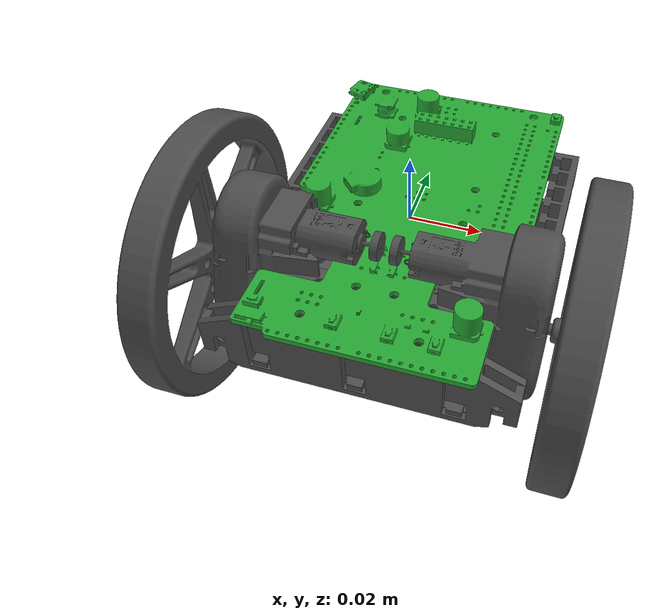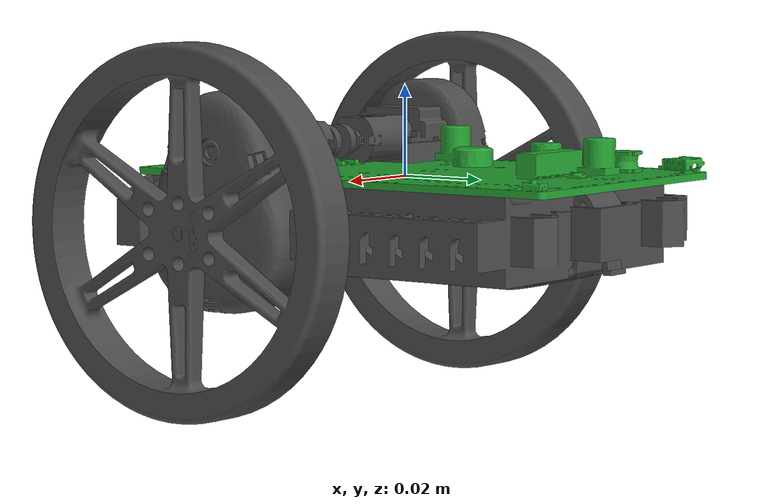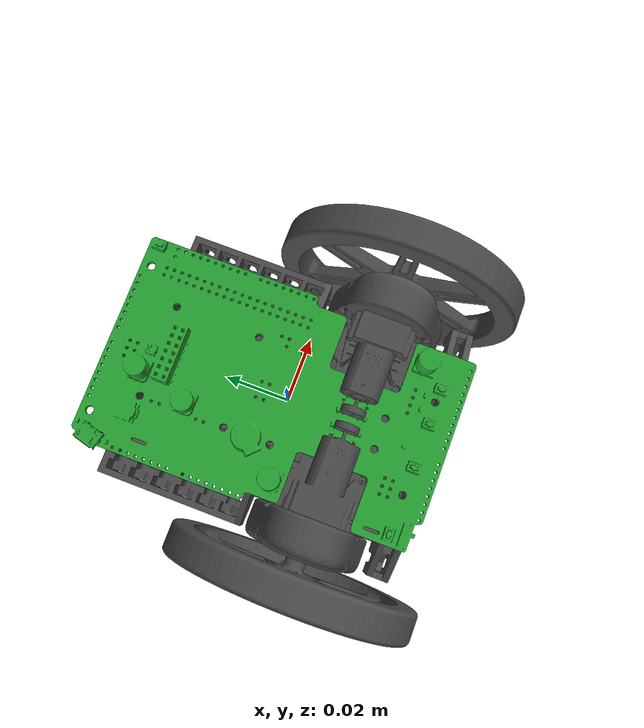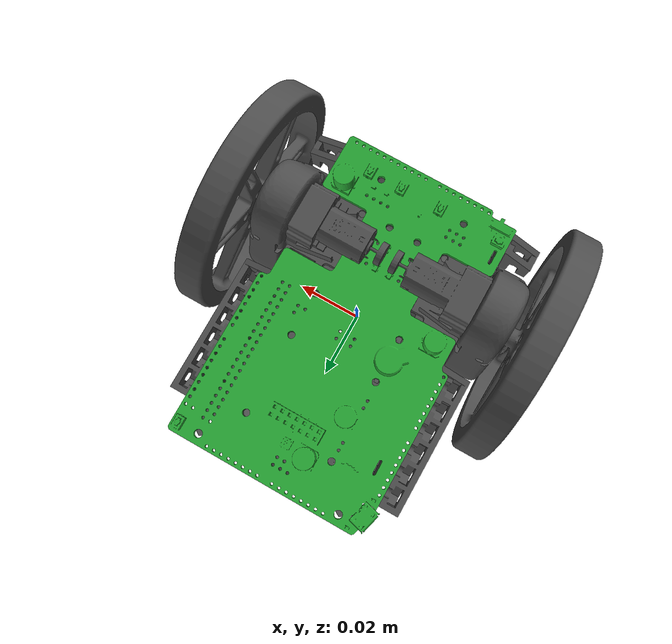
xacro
<?xml version="1.0"?>
<robot name="balancingkit_on_gazebo"
       xmlns:controller="http://playerstage.sourceforge.net/gazebo/xmlschema/#controller"
       xmlns:interface="http://playerstage.sourceforge.net/gazebo/xmlschema/#interface"
       xmlns:xacro="http://ros.org/wiki/xacro">

  <xacro:include filename="$(find balancingkit_description)/urdf/body/body.urdf.xacro"/>
  <xacro:include filename="$(find balancingkit_description)/urdf/wheel/wheel.urdf.xacro"/>
  <xacro:include filename="$(find balancingkit_description)/urdf/sensors/imu.urdf.xacro" />

  <!-- =============== Link & Joint =============== -->
  <!-- Base -->
  <link name="base_footprint"/>

  <xacro:base parent="base_footprint">
    <origin xyz="0 0 0"/>
  </xacro:base>

  <!-- Wheel -->
  <xacro:wheel prefix="right" parent="base_link" origin_x="-0.051" origin_x_2="0.051">
    <origin xyz="0.051 -0.02 -0.0097"/>
    <axis xyz="1 0 0"/>
  </xacro:wheel>
  <xacro:wheel prefix="left" parent="base_link" origin_x="0.051" origin_x_2="-0.051">
    <origin xyz="-0.051 -0.02 -0.0097"/>
    <axis xyz="1 0 0"/>
  </xacro:wheel>

  <!-- Sensors -->
  <xacro:imu_sensor prefix="imu" parent="base_link">
    <origin xyz="0.02 0.048 0"/>
  </xacro:imu_sensor>

  <!-- ===============  Transmission =============== -->
  <!-- PositionJointInterface: requires position -->
  <!-- VelocityJointInterface: requires position, velocity -->
  <!-- for DiffDriveController -->
  <xacro:wheel_trans prefix="right" interface="hardware_interface/VelocityJointInterface"/>
  <xacro:wheel_trans prefix="left" interface="hardware_interface/VelocityJointInterface"/>
  <!-- EffortJointInterface: requires position, velocity, effort -->

  <!-- =============== Gazebo =============== -->
  <gazebo>
    <plugin name="gazebo_ros_control" filename="libgazebo_ros_control.so">
      <robotNamespace>balancingkit_on_gazebo</robotNamespace>
      <robotSimType>gazebo_ros_control/DefaultRobotHWSim</robotSimType>
      <legacyModeNS>true</legacyModeNS> <!-- FIXME -->
    </plugin>
  </gazebo>

  <!-- Base -->
  <xacro:base_gazebo/>

  <!-- Wheel -->
  <xacro:wheel_gazebo prefix="right"/>
  <xacro:wheel_gazebo prefix="left"/>

  <!-- Sensors -->
  <xacro:imu_gazebo prefix="imu"/>

  <balancingkit_on_gazebo/>
</robot>

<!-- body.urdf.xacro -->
<robot xmlns:xacro="http://ros.org/wiki/xacro">
  <xacro:include filename="$(find balancingkit_description)/urdf/body/body.gazebo.xacro"/>
  <xacro:property name="M_PI" value="3.1415926535897931" />
  <xacro:property name="velocity_scale_factor" value="1.0"/>
  <xacro:macro name="base" params="parent *joint_origin">
    <joint name="base_joint" type="fixed">
      <insert_block name="joint_origin"/>
      <parent link="${parent}"/>
      <child link="base_link"/>
    </joint>
    <link name="base_link">
      <visual>
        <geometry>
          <mesh filename="package://balancingkit_description/meshes/stl/body/balboa_balancing_robot_kit_body_chassis_m.stl"/>
        </geometry>
      </visual>
      <collision>
        <geometry>
          <mesh filename="package://balancingkit_description/meshes/stl/body/balboa_balancing_robot_kit_body_chassis_m.stl"/>
        </geometry>
      </collision>
      <inertial>

        <!-- NOTE BEGINNING -->
        <!-- Biased origin causes the slipping problem. -->
        <!-- Not solved yet. -->
        <!-- NOTE END -->
        <!-- real origin -->
        <!-- virtual origin -->

        <mass value="0.0687016219743" />
        <inertia ixx="0.00004951341871460000" ixy="0.00000045970330081100" ixz="0.00000003906431665210" iyy="0.00007420445567420000" iyz="0.00000188480164726000" izz="0.00011062967861500000" />
      </inertial>
    </link>

    <joint name="circuit_board_joint" type="fixed">
      <origin xyz="0 0 0" rpy="0 0 0"/>
      <axis xyz="0 0 0"/>
      <parent link="base_link"/>
      <child link="circuit_board"/>
    </joint>
    <link name="circuit_board">
      <inertial>
        <mass value="0.0116038891251" />
        <inertia ixx="0.00000000181524184545" ixy="-0.00000000011398958073" ixz="0.00000000001336676747" iyy="0.00000000181524184545" iyz="0.00000000001336676747" izz="0.00000000290410460112" />
      </inertial>
      <visual>
        <geometry>
          <mesh filename="package://balancingkit_description/meshes/stl/body/balboa_balancing_robot_kit_body_bal01a01_m.stl"/>
        </geometry>
      </visual>
      <collision>
        <geometry>
          <mesh filename="package://balancingkit_description/meshes/stl/body/balboa_balancing_robot_kit_body_bal01a01_m.stl"/>
        </geometry>
      </collision>
    </link>

    <joint name="battery_cover_joint" type="fixed">
      <origin xyz="0 0 0" rpy="0 0 0"/>
      <axis xyz="0 0 0"/>
      <parent link="base_link"/>
      <child link="battery_cover"/>
    </joint>
    <link name="battery_cover">
      <inertial>
        <mass value="0.0135409963305" />
        <inertia ixx="0.000009581429872300" ixy="-0.000000000605271997" ixz="0.000000000019527174" iyy="0.000003388820896330" iyz="-0.000000230335514201" izz="0.000012756434222000" />
      </inertial>
      <visual>
        <geometry>
          <mesh filename="package://balancingkit_description/meshes/stl/body/balboa_balancing_robot_kit_body_battery-cover_m.stl"/>
        </geometry>
      </visual>
      <collision>
        <geometry>
          <mesh filename="package://balancingkit_description/meshes/stl/body/balboa_balancing_robot_kit_body_battery-cover_m.stl"/>
        </geometry>
      </collision>
    </link>

  </xacro:macro>
</robot>

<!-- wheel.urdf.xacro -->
<robot xmlns:xacro="http://ros.org/wiki/xacro">
  <xacro:include filename="$(find balancingkit_description)/urdf/wheel/wheel.transmission.xacro"/>
  <xacro:include filename="$(find balancingkit_description)/urdf/wheel/wheel.gazebo.xacro"/>
  <property name="wheel_radius" value="0.03825"/>
  <property name="wheel_length" value="0.01"/> <!-- width? -->
  <property name="wheel_mass" value="0.0192200809141"/>
  <xacro:macro name="wheel" params="prefix parent origin_x origin_x_2 *joint_origin *joint_axis">
  <joint name="${prefix}_wheel_joint" type="continuous">
    <origin xyz="${origin_x} -0.02 -0.0097"/>
    <axis xyz="1 0 0"/>
    <insert_block name="joint_axis"/>
    <parent link="${parent}"/>
    <child link="${prefix}_wheel"/>
    <limit effort="70" velocity="15"/> <!-- TODO Need to calculate -->
    <safety_controller  k_velocity="10" />
    <dynamics damping="1.0" friction="1.0" /> <!-- TODO Need to consider -->
  </joint>
  <link name="${prefix}_wheel">
    <visual>
      <origin xyz="${origin_x_2} 0.02 0.0097" rpy="0 0 0"/>
      <geometry>
        <mesh filename="package://balancingkit_description/meshes/stl/wheel/balboa_balancing_robot_kit_wheel_${prefix}_m.stl"/>
      </geometry>
    </visual>
    <collision>
      <origin xyz="${origin_x_2} 0.02 0.0097" rpy="0 0 0"/>
      <geometry>
        <mesh filename="package://balancingkit_description/meshes/stl/wheel/balboa_balancing_robot_kit_wheel_${prefix}_m.stl"/>
      </geometry>
    </collision>
      <inertial>
        <origin xyz="${origin_x_2} 0.02 0.0097" rpy="0 0 0"/>
        <mass value="${wheel_mass}"/>
        <inertia ixx="0.000021836231232000" ixy="0.000000000014016411" ixz="-0.000000000002704489" iyy="0.000011052671184900" iyz="-0.000000000002905832" izz="0.000011048923704800" />
      </inertial>
  </link>
  </xacro:macro>
</robot>

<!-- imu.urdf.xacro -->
<robot name="imu_sensor" xmlns:xacro="http://ros.org/wiki/xacro">
  <xacro:include filename="$(find balancingkit_description)/urdf/sensors/imu.gazebo.xacro" />

  <xacro:macro name="imu_sensor" params="prefix parent *joint_origin">
    <joint name="${prefix}_joint" type="fixed">
      <xacro:insert_block name="joint_origin" />
      <parent link="${parent}"/>
      <child link="${prefix}_link"/>
    </joint>
    <link name="${prefix}_link"/>
  </xacro:macro>
</robot>
